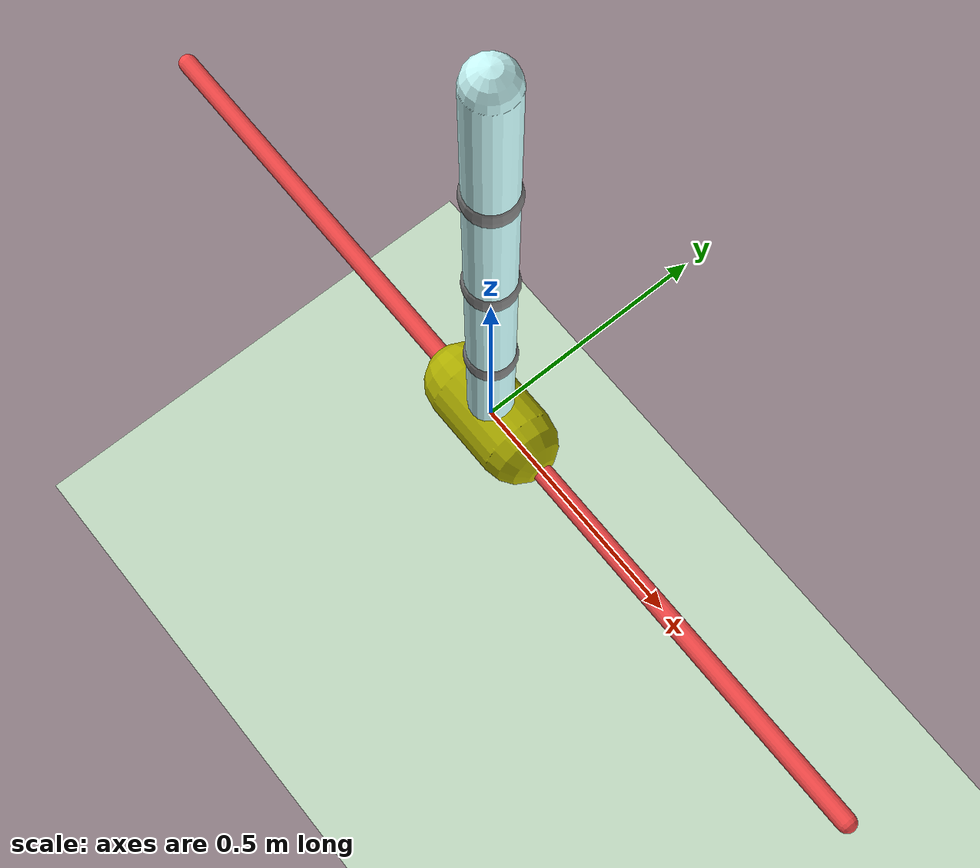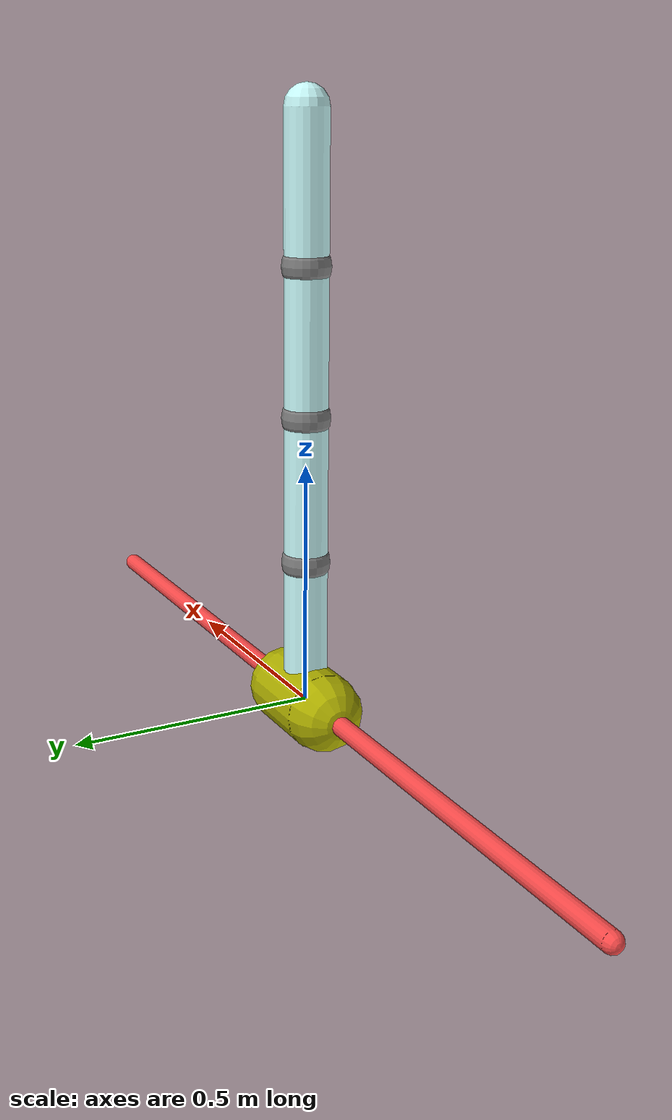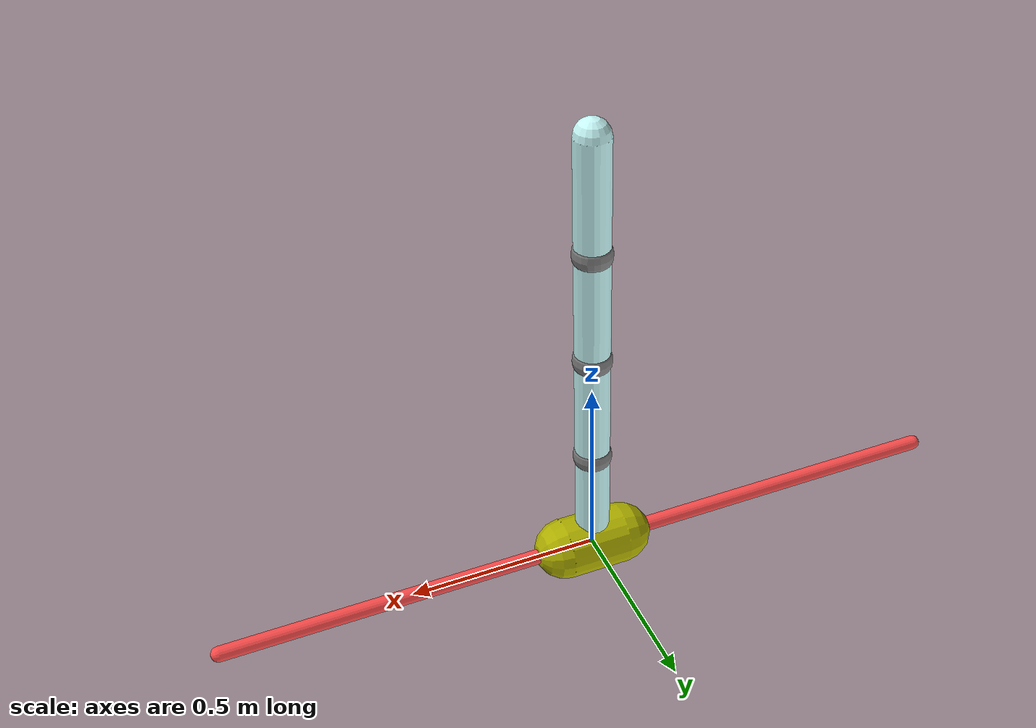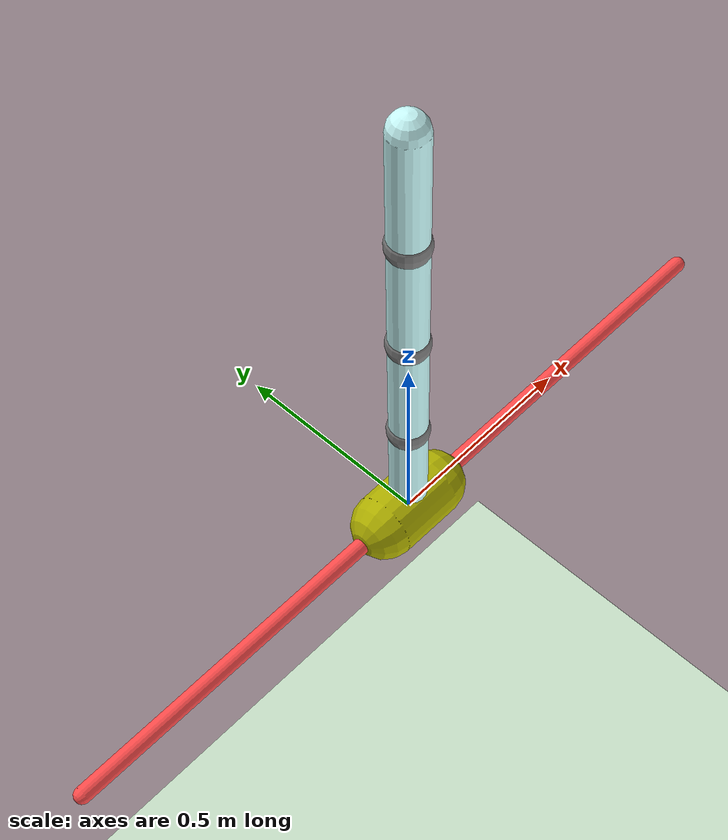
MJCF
<mujoco model="cartpole">
  <compiler coordinate="local" inertiafromgeom="true"/>
  <custom>
    <numeric data="2" name="frame_skip"/>
  </custom>
  <default>
    <joint damping="0.05"/>
    <geom contype="0" friction="1 0.1 0.1" rgba="0.7 0.7 0 1"/>
  </default>
  <option gravity="0 0 -9.81" integrator="RK4" timestep="0.01"/>
  <size nstack="3000"/>
  <worldbody>
    <geom name="floor" pos="0 0 -3.0" rgba="0.8 0.9 0.8 1" size="40 40 40" type="plane"/>
    <geom name="rail" pos="0 0 0" quat="0.707 0 0.707 0" rgba="1 0.3 0.3 1" size="0.02 1" type="capsule"/>
    <body name="cart" pos="0 0 0">
      <joint axis="1 0 0" limited="true" margin="0.01" name="slider" pos="0 0 0" range="-1 1" type="slide"/>
      <geom name="cart" pos="0 0 0" quat="0.707 0 0.707 0" size="0.08 0.08" type="capsule"/>
      <body name="pole" pos="0 0 0">
        <joint axis="0 1 0" name="hinge" pos="0 0 0" type="hinge"/>
        <geom fromto="0 0 0 0 0 0.3" name="cpole" rgba="0.8 1.4 1.4 1" size="0.045 0.3" type="capsule"/>
        <site name="tip1" pos="0 0 .3" size="0.05 0.05" type="sphere"/>
        <body name="pole2" pos="0 0 0.3">
          <joint axis="0 1 0" name="hinge2" pos="0 0 0" type="hinge"/>
          <geom fromto="0 0 0 0 0 0.3" name="cpole2" rgba="0.8 1.4 1.4 1" size="0.045 0.3" type="capsule"/>
          <site name="tip2" pos="0 0 .3" size="0.05 0.05" type="sphere"/>
          <body name="pole3" pos="0 0 0.3">
            <joint axis="0 1 0" name="hinge3" pos="0 0 0" type="hinge"/>
            <geom fromto="0 0 0 0 0 0.3" name="cpole3" rgba="0.8 1.4 1.4 1" size="0.045 0.3" type="capsule"/>
            <site name="tip3" pos="0 0 .3" size="0.05 0.05" type="sphere"/>
            <body name="pole4" pos="0 0 0.3">
              <joint axis="0 1 0" name="hinge4" pos="0 0 0" type="hinge"/>
              <geom fromto="0 0 0 0 0 0.3" name="cpole4" rgba="0.8 1.4 1.4 1" size="0.045 0.3" type="capsule"/>
              <site name="tip4" pos="0 0 .3" size="0.01 0.01" type="sphere"/>
            </body>
          </body>
        </body>
      </body>
    </body>
  </worldbody>
  <actuator>
    <motor ctrllimited="true" ctrlrange="-1 1" gear="500" joint="slider" name="slide"/>
  </actuator>
</mujoco>
